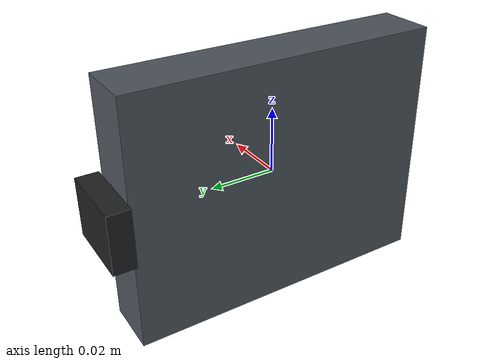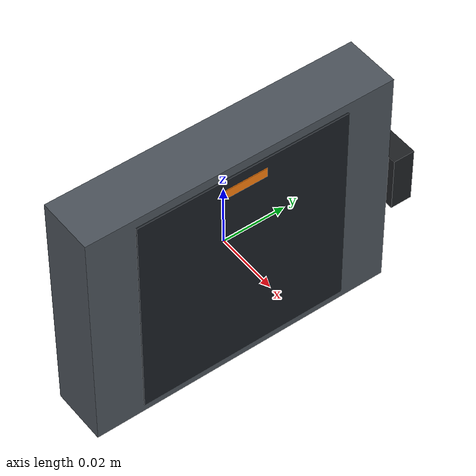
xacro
<?xml version="1.0"?>
<!-- SPDX-License-Identifier: Apache-2.0 -->
<robot name="umrr96_standalone" xmlns:xacro="http://www.ros.org/wiki/xacro">
  <xacro:include filename="umrr96_macro.urdf.xacro"/>
  <xacro:arg name="sensor_name" default="umrr96"/>
  <xacro:arg name="frame_id" default="$(arg sensor_name)"/>
  <xacro:arg name="measurement_xyz" default="0 0 0"/>
  <xacro:arg name="measurement_rpy" default="0 0 0"/>
  <xacro:umrr96_sensor name="$(arg sensor_name)" frame_id="$(arg frame_id)"
      measurement_xyz="$(arg measurement_xyz)" measurement_rpy="$(arg measurement_rpy)"/>
</robot>

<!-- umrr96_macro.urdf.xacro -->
<!-- SPDX-License-Identifier: Apache-2.0 -->
<robot xmlns:xacro="http://www.ros.org/wiki/xacro">
  <xacro:macro name="umrr96_sensor" params="
      name:=umrr96 frame_id:='' parent:=''
      xyz:='0 0 0' rpy:='0 0 0'
      measurement_xyz:='0 0 0' measurement_rpy:='0 0 0'">
    <xacro:property name="data_frame" value="${frame_id if frame_id else name}"/>
    <xacro:property name="body_depth" value="0.0177"/>
    <xacro:property name="body_width" value="0.097"/>
    <xacro:property name="body_height" value="0.076"/>

    <link name="${name}_link">
      <!-- Nominal housing envelope; tabs/ribs/fasteners are not CAD detail. -->
      <visual name="${name}_housing">
        <geometry><box size="${body_depth} ${body_width} ${body_height}"/></geometry>
        <material name="${name}_housing_material"><color rgba="0.30 0.33 0.36 1"/></material>
      </visual>
      <!-- Front-face colour inset for orientation only; not antenna geometry. -->
      <visual name="${name}_front_indicator">
        <origin xyz="${body_depth / 2 + 0.00025} 0 0" rpy="0 0 0"/>
        <geometry><box size="0.0005 0.067 0.070"/></geometry>
        <material name="${name}_front_material"><color rgba="0.10 0.12 0.14 1"/></material>
      </visual>
      <!-- Small top mark makes an upside-down mounting visible in RViz. -->
      <visual name="${name}_top_indicator">
        <origin xyz="${body_depth / 2 + 0.0006} 0 0.030" rpy="0 0 0"/>
        <geometry><box size="0.0002 0.014 0.003"/></geometry>
        <material name="${name}_top_material"><color rgba="1 0.50 0.05 1"/></material>
      </visual>
      <!-- Only the dimensioned lateral protrusion is modelled, not the plug. -->
      <visual name="${name}_connector_envelope">
        <origin xyz="0 ${body_width / 2 + 0.0034} 0" rpy="0 0 0"/>
        <geometry><box size="0.02245 0.0068 0.018"/></geometry>
        <material name="${name}_connector_material"><color rgba="0.12 0.13 0.14 1"/></material>
      </visual>
      <!-- Conservative bounding box including connector/projections. A cable
           and mounting bracket must be added to the eventual robot model. -->
      <collision name="${name}_overall_envelope">
        <origin xyz="0 0.0034 0" rpy="0 0 0"/>
        <geometry><box size="0.02245 0.1038 0.076"/></geometry>
      </collision>
      <!-- No inertial: <=153 g is an upper bound, and COM/inertia are unknown.
           This description is for TF, visualization and coarse collision. -->
    </link>

    <xacro:if value="${parent != ''}">
      <joint name="${name}_mount_joint" type="fixed">
        <parent link="${parent}"/>
        <child link="${name}_link"/>
        <origin xyz="${xyz}" rpy="${rpy}"/>
      </joint>
    </xacro:if>

    <link name="${data_frame}"/>
    <joint name="${name}_measurement_joint" type="fixed">
      <parent link="${name}_link"/>
      <child link="${data_frame}"/>
      <origin xyz="${measurement_xyz}" rpy="${measurement_rpy}"/>
    </joint>
  </xacro:macro>
</robot>
